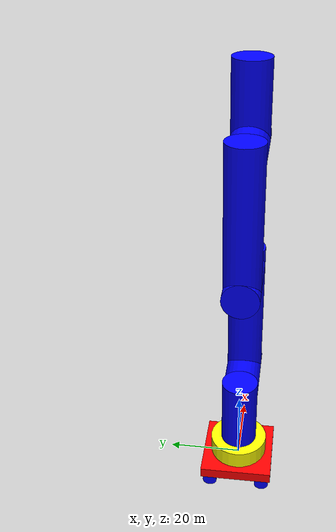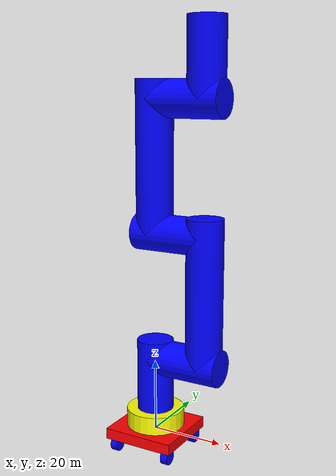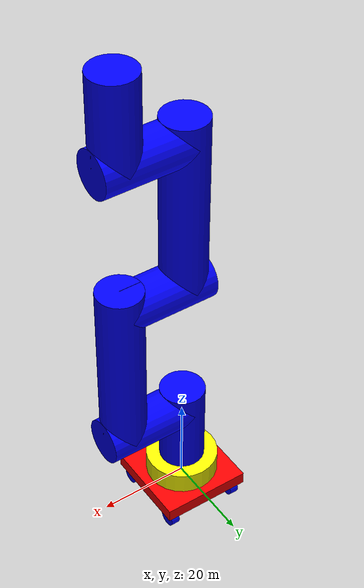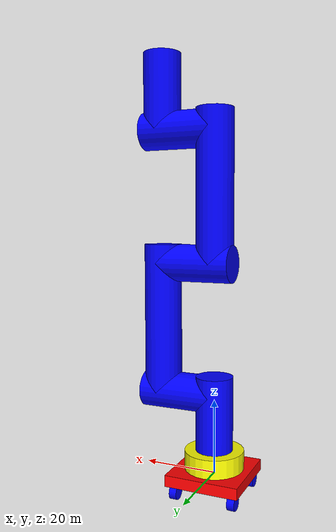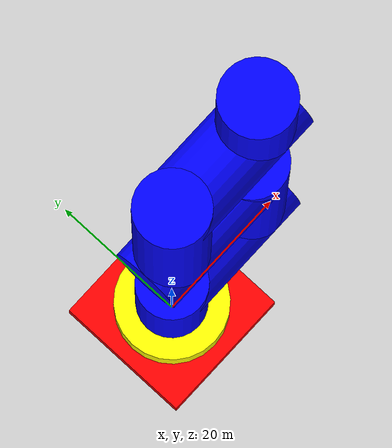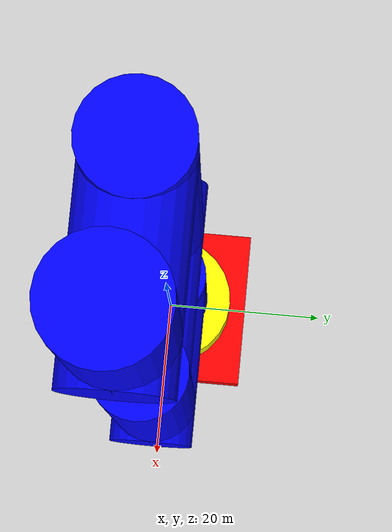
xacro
<?xml version="1.0"?>

<robot name="slide" xmlns:xacro="http://wiki.ros.org/xacro">
    <xacro:include filename="$(find kukaiiwa_slide_xacro)/urdf/slide_macro.xacro" />
	<xacro:include filename="$(find kukaiiwa_slide_xacro)/urdf/kukaiiwa_macro.xacro" />

		<!-- slide -->
		<xacro:slide_macro
			slide_name="slide">
		</xacro:slide_macro>

		<!-- first joint wheel -->
		<xacro:wheel_to_plane_joint
			name="front_whell_dx_joint"
			parent="slide"
			child="front_whell_dx">
			<origin xyz="8 7.5 -3.5" />
		</xacro:wheel_to_plane_joint>

		<!-- first wheel-->
		<xacro:wheel name="front_whell_dx">
			<origin xyz="0 0 0" rpy="0 1.57 0"/>
		</xacro:wheel>

		<!-- second joint wheel -->
		<xacro:wheel_to_plane_joint
			name="front_whell_sx_joint"
			parent="slide"
			child="front_whell_sx">
			<origin xyz="-8 7.5 -3.5" />
		</xacro:wheel_to_plane_joint>

		<!-- second wheel-->
		<xacro:wheel name="front_whell_sx">
			<origin xyz="0 0 0" rpy="0 1.57 0"/>
		</xacro:wheel>

		<!-- third joint wheel-->
		<xacro:wheel_to_plane_joint
			name="rear_whell_dx_joint"
			parent="slide"
			child="rear_whell_dx">
			<origin xyz="8 -7.5 -3.5" />
		</xacro:wheel_to_plane_joint>

		<!-- third wheel-->
		<xacro:wheel name="rear_whell_dx">
			<origin xyz="0 0 0" rpy="0 1.57 0"/>
		</xacro:wheel>

		<!-- fourh joint wheel-->
		<xacro:wheel_to_plane_joint
			name="rear_whell_sx_joint"
			parent="slide"
			child="rear_whell_sx">
			<origin xyz="-8 -7.5 -3.5" />
		</xacro:wheel_to_plane_joint>

		<!-- fourth wheel-->
		<xacro:wheel name="rear_whell_sx">
			<origin xyz="0 0 0" rpy="0 1.57 0"/>
		</xacro:wheel>

		<!-- robot_to_slide_joint-->
		<joint name="robot_to_slide" type="fixed">
			<parent link="slide" />
			<child link="base_link" />
			<origin xyz="0 0 1.5"/>
		</joint>

		<!-- base link -->
		<xacro:base_link_macro
			base_link_name="base_link">
		</xacro:base_link_macro>

		<!-- first joint -->
		<xacro:kukaiiwa_joint
			name="first_joint"
			type="revolute"
			parent="base_link"
			child="first_link">
			<origin xyz="0 0 0" />
			<axis xyz="0 0 1"/>
			<limit effort="176" velocity="1.96" lower="-2.97" upper="2.97" /> <!-- effort in Nm, velocity in rad/s lower e upper in rad -->
		</xacro:kukaiiwa_joint>

		<!-- first link-->
		<xacro:kukaiiwa_link name="first_link">
			<geometry>
				<cylinder length="20" radius="5"/>
			</geometry>
			<origin xyz="0 0 15" rpy="0 0 0"/>
		</xacro:kukaiiwa_link>

		<!-- second joint -->
		<xacro:kukaiiwa_joint
			name="second_joint"
			type="revolute"
			parent="first_link"
			child="second_link">
			<origin xyz="0 0 20"/>
			<axis xyz="1 0 0"/>
			<limit effort="176" velocity="1.96" lower="-2.09" upper="2.09" />
		</xacro:kukaiiwa_joint>

		<!-- second link -->
		<xacro:kukaiiwa_link name="second_link">
			<geometry>
				<cylinder length="20" radius="5"/>
			</geometry>
			<origin xyz="10 0 0" rpy="0 1.57 0"/>
		</xacro:kukaiiwa_link>

		<!-- third joint -->
		<xacro:kukaiiwa_joint
			name="third_joint"
			type="revolute"
			parent="second_link"
			child="third_link">
			<origin xyz="15 0 0"/>
			<axis xyz="0 0 1"/>
			<limit effort="110" velocity="2" lower="-2.97" upper="2.97" />
		</xacro:kukaiiwa_joint>

		<!-- third link  -->
		<xacro:kukaiiwa_link name="third_link">
			<geometry>
				<cylinder length="40" radius="5"/>
			</geometry>
			<origin xyz="0 0 20" rpy="0 0 0"/>
		</xacro:kukaiiwa_link>

		<!-- fourth joint -->
		<xacro:kukaiiwa_joint
			name="forth_joint"
			type="revolute"
			parent="third_link"
			child="fourth_link">
			<origin xyz="0 0 35"/>
			<axis xyz="1 0 0"/>
			<limit effort="110" velocity="2.6" lower="-2.09" upper="2.09" />
		</xacro:kukaiiwa_joint>

		<!-- fourth link -->
		<xacro:kukaiiwa_link name="fourth_link">
			<geometry>
				<cylinder length="20" radius="5"/>
			</geometry>
			<origin xyz="-10 0 0" rpy="0 1.57 0"/>
		</xacro:kukaiiwa_link>

		<!-- fifth joint -->
		<xacro:kukaiiwa_joint
			name="fifth_joint"
			type="revolute"
			parent="fourth_link"
			child="fifth_link">
			<origin xyz="-15 0 0"/>
			<axis xyz="0 0 1"/>
			<limit effort="110" velocity="2.8" lower="-2.97" upper="2.97" />
		</xacro:kukaiiwa_joint>

		<!-- fifth link -->
		<xacro:kukaiiwa_link name="fifth_link">
			<geometry>
				<cylinder length="40" radius="5"/>
			</geometry>
			<origin xyz="0 0 20" rpy="0 0 0"/>
		</xacro:kukaiiwa_link>

		<!-- sixth joint -->
		<xacro:kukaiiwa_joint
			name="sixth_joint"
			type="revolute"
			parent="fifth_link"
			child="sixth_link">
			<origin xyz="0 0 35"/>
			<axis xyz="1 0 0"/>
			<limit effort="40" velocity="3.6" lower="-2.09" upper="2.09" />
		</xacro:kukaiiwa_joint>

		<!-- sixth link -->
		<xacro:kukaiiwa_link name="sixth_link">
			<geometry>
				<cylinder length="20" radius="5"/>
			</geometry>
			<origin xyz="10 0 0" rpy="0 1.57 0"/>
		</xacro:kukaiiwa_link>

		<!-- seventh joint -->
		<xacro:kukaiiwa_joint
			name="seventh_joint"
			type="revolute"
			parent="sixth_link"
			child="seventh_link">
			<origin xyz="15 0 0"/>
			<axis xyz="0 0 1"/>
			<limit effort="40" velocity="3.6" lower="-3.05" upper="3.05" />
		</xacro:kukaiiwa_joint>

		<!-- seventh link -->
		<xacro:kukaiiwa_link name="seventh_link">
			<geometry>
				<cylinder length="20" radius="5"/>
			</geometry>
			<origin xyz="0 0 10" rpy="0 0 0"/>
		</xacro:kukaiiwa_link>

</robot>

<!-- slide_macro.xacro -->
<robot name="slide_macro" xmlns:xacro="http://wiki.ros.org/xacro">

	<xacro:macro name="slide_macro" params="slide_name">
		<link name="${slide_name}">
			<visual>
				<geometry>
					<box size="3 20 20"/>
				</geometry>
				<origin rpy="0 1.57 0" xyz="0 0 0"/>
				<material name="red">
					<color rgba="1 0 0 1"/>
				</material>
			</visual>
			<collision>
				<geometry>
					<box size="3 20 20"/>
				</geometry>
				<origin rpy="0 1.57 0" xyz="0 0 0"/>
			</collision>
			<inertial>
				<mass value="1"/>
				<inertia ixx="1.0" ixy="0.0" ixz="0.0" iyy="1.0" iyz="0.0" izz="1.0"/>
			</inertial>
		</link>
	</xacro:macro>

	<xacro:macro name="wheel_to_plane_joint" params="name parent child *origin">
		<joint name="${name}" type="revolute">
			<parent link="${parent}" />
			<child link="${child}" />
	   		<xacro:insert_block name="origin" />
			<axis xyz="1 0 0"/>
			<limit effort="1" velocity="2.5" upper="-3.1415" lower="3.1415"/>
			<dynamics damping="10" friction="1"/>
		</joint>
	</xacro:macro>

	<xacro:macro name="wheel" params="name *origin">
		<link name="${name}">
			<visual>
				<geometry>
					<cylinder length="2" radius="2"/>
				</geometry>
				<xacro:insert_block name="origin" />
				<material name="blue">
				  <color rgba="0 0 1 1"/>
				</material>
			</visual>
			<collision>
				<geometry>
					<cylinder length="2" radius="2"/>
				</geometry>
				<xacro:insert_block name="origin" />
			</collision>
			<inertial>
				<mass value="1"/>
				<inertia ixx="1.0" ixy="0.0" ixz="0.0" iyy="1.0" iyz="0.0" izz="1.0"/>
			</inertial>
		</link>
	</xacro:macro>

</robot>

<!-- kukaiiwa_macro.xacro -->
<robot name="kukaiwaa_macro" xmlns:xacro="http://wiki.ros.org/xacro">

	<xacro:macro name="base_link_macro" params="base_link_name">
		<link name="${base_link_name}">
			<visual>
				<geometry>
					<cylinder length="5" radius="8"/>
				</geometry>
				<origin rpy="0 0 0" xyz="0 0 2.5"/>
				<material name="yellow">
					<color rgba="1 1 0 1"/>
				</material>
			</visual>
			<collision>
				<geometry>
					<cylinder length="5" radius="8"/>
				</geometry>
				<origin rpy="0 0 0" xyz="0 0 2.5"/>
			</collision>
			<inertial>
				<mass value="1"/>
				<inertia ixx="1.0" ixy="0.0" ixz="0.0" iyy="1.0" iyz="0.0" izz="1.0"/>
			</inertial>
		</link>
	</xacro:macro>

	<xacro:macro name="kukaiiwa_joint" params="name type parent child *origin *axis *limit">
		<joint name="${name}" type="${type}">
			<parent link="${parent}" />
			<child link="${child}" />
	   		<xacro:insert_block name="origin" />
			<xacro:insert_block name="axis" />
			<xacro:insert_block name="limit"/>
			<dynamics damping="50" friction="1"/>
		</joint>
	</xacro:macro>

	<xacro:macro name="kukaiiwa_link" params="name *geometry *origin">
		<link name="${name}">
			<visual>
				<xacro:insert_block name="geometry" />
				<xacro:insert_block name="origin" />
				<material name="blue">
				  <color rgba="0 0 1 1"/>
				</material>
			</visual>
			<collision>
				<xacro:insert_block name="geometry" />
				<xacro:insert_block name="origin" />
			</collision>
			<inertial>
				<mass value="1"/>
				<inertia ixx="1.0" ixy="0.0" ixz="0.0" iyy="1.0" iyz="0.0" izz="1.0"/>
			</inertial>
		</link>
	</xacro:macro>

</robot>
